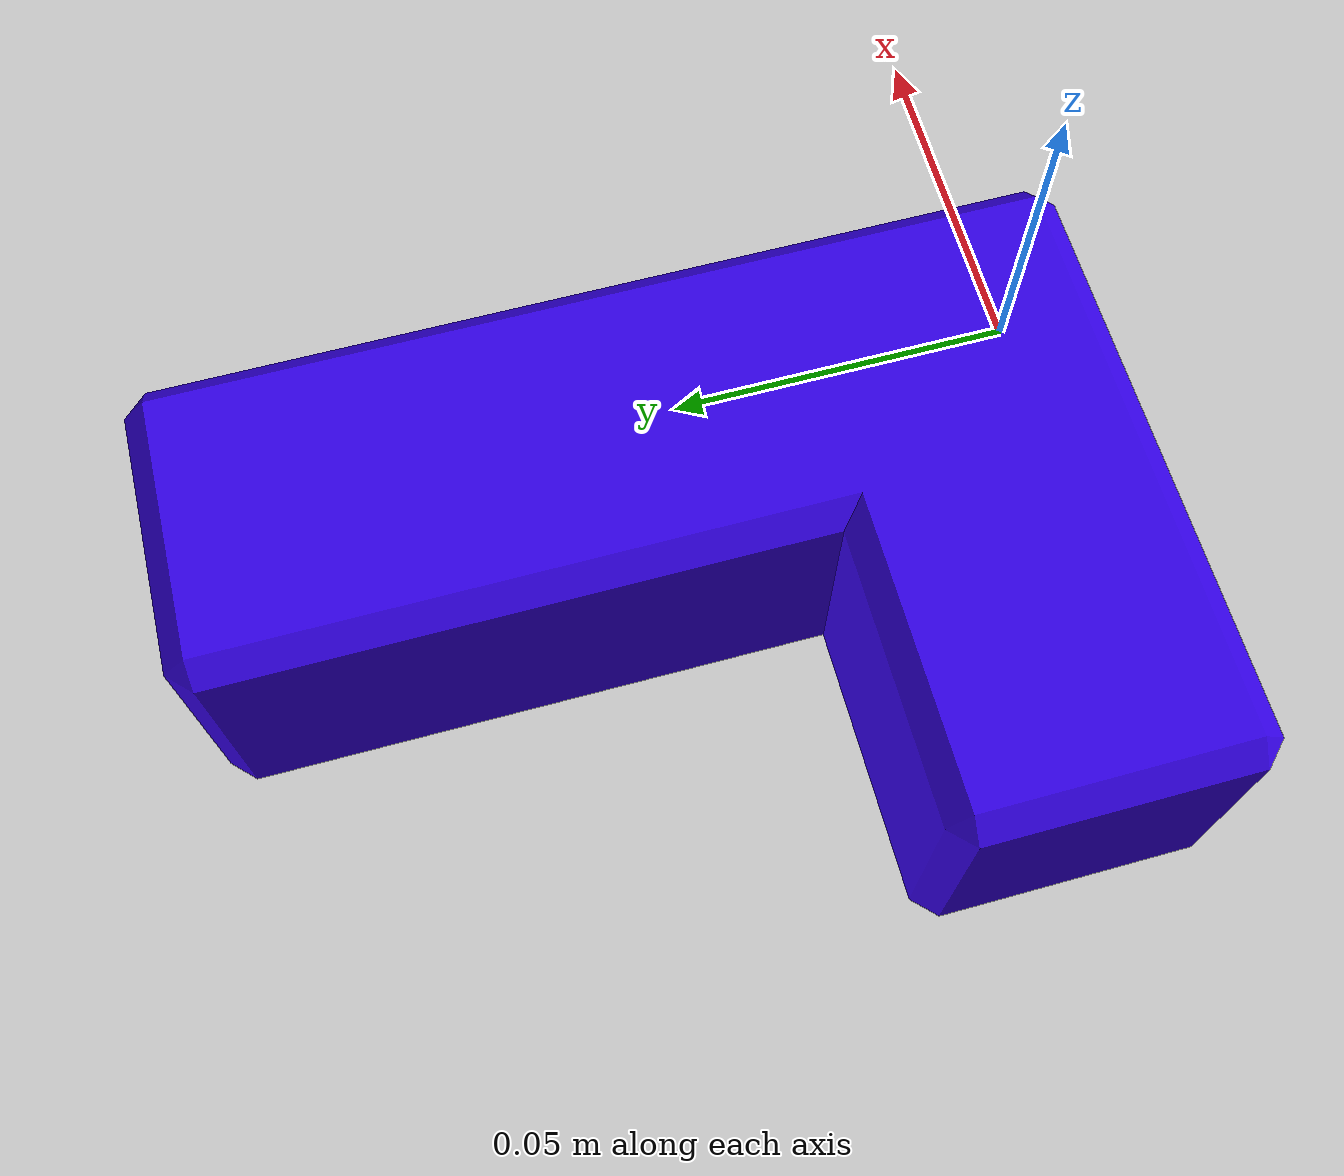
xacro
<?xml version="1.0" ?>
<robot name="Tetris_J" xmlns:xacro="http://www.ros.org/wiki/xacro">

<xacro:include filename="$(find Tetris_J_description)/urdf/materials.xacro" />

<material name="color">
  <color rgba="0.2 0.0 0.9 1.000"/>
</material>

<link name="base_link">
  <inertial>
    <origin xyz="-0.029942726752549054 0.049955601163465285 0.02" rpy="0 0 0"/>
    <mass value="0.26676172"/>
    <inertia ixx="0.000361" iyy="0.000148" izz="0.000439" ixy="-8e-05" iyz="-0.0" ixz="0.0"/>
  </inertial>

  <visual>
  <origin xyz="0 0 0" rpy="0 0 0"/>
    <geometry>
      <mesh filename="package://Tetris_J_description/meshes/base_link.stl" scale="0.001 0.001 0.001"/>
    </geometry>
    <material name="color"/>
  </visual>

  <collision>
    <origin xyz="-.02 .06 .02" rpy="0 0 0"/>
    <geometry>
      <box size="0.04 0.12 0.04"/> <!-- Adjust the size of the first box -->
      <origin xyz="0.0 0.06 0.02" rpy="0 0 0"/> <!-- Offset the first box by (0.05, 0.05, 0.05) -->
    </geometry>
  </collision>
  <collision>
    <origin xyz="-.06 .02 .02" rpy="0 0 0"/>
    <geometry>
      <box size="0.04 0.04 0.04"/> <!-- Adjust the size of the first box -->
      <origin xyz="0.0 0.06 0.02" rpy="0 0 0"/> <!-- Offset the first box by (0.05, 0.05, 0.05) -->
    </geometry>
  </collision>
</link>

</robot>

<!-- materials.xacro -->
<robot name="Tetris_J" xmlns:xacro="http://www.ros.org/wiki/xacro" >

<material name="silver">
  <color rgba="0.700 0.700 0.700 1.000"/>
</material>

</robot>
